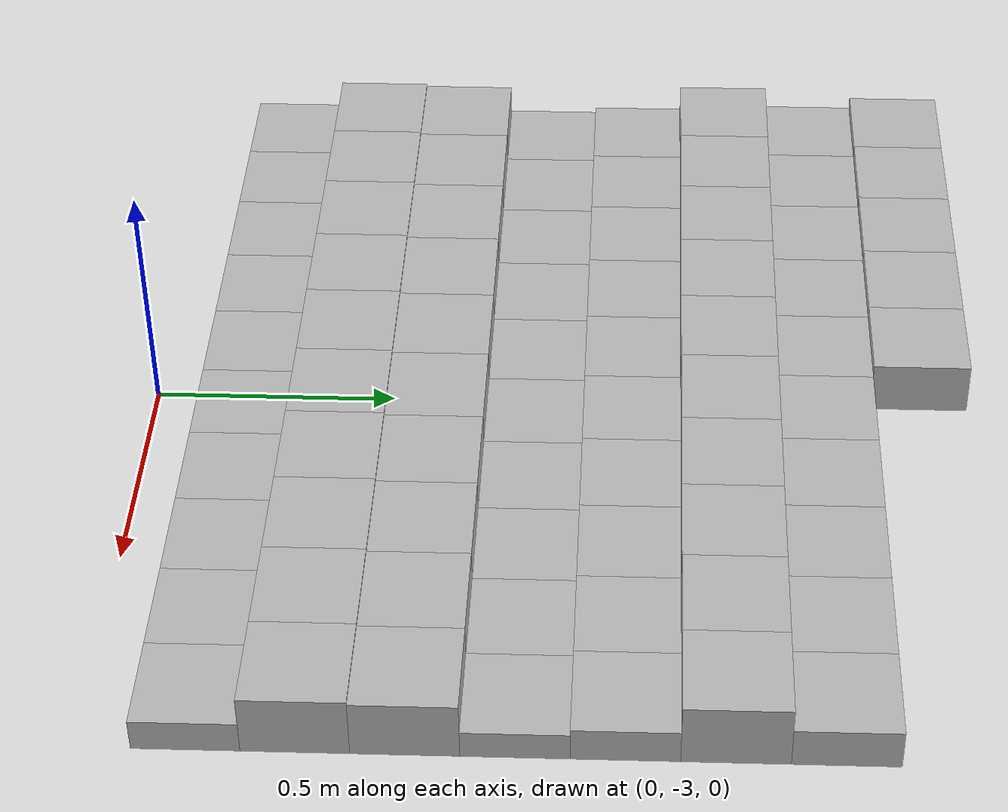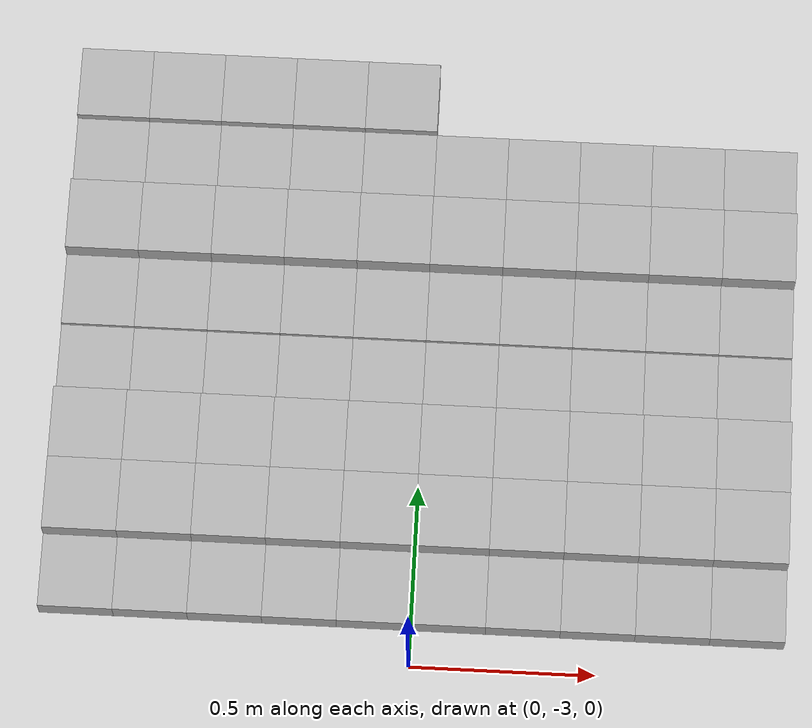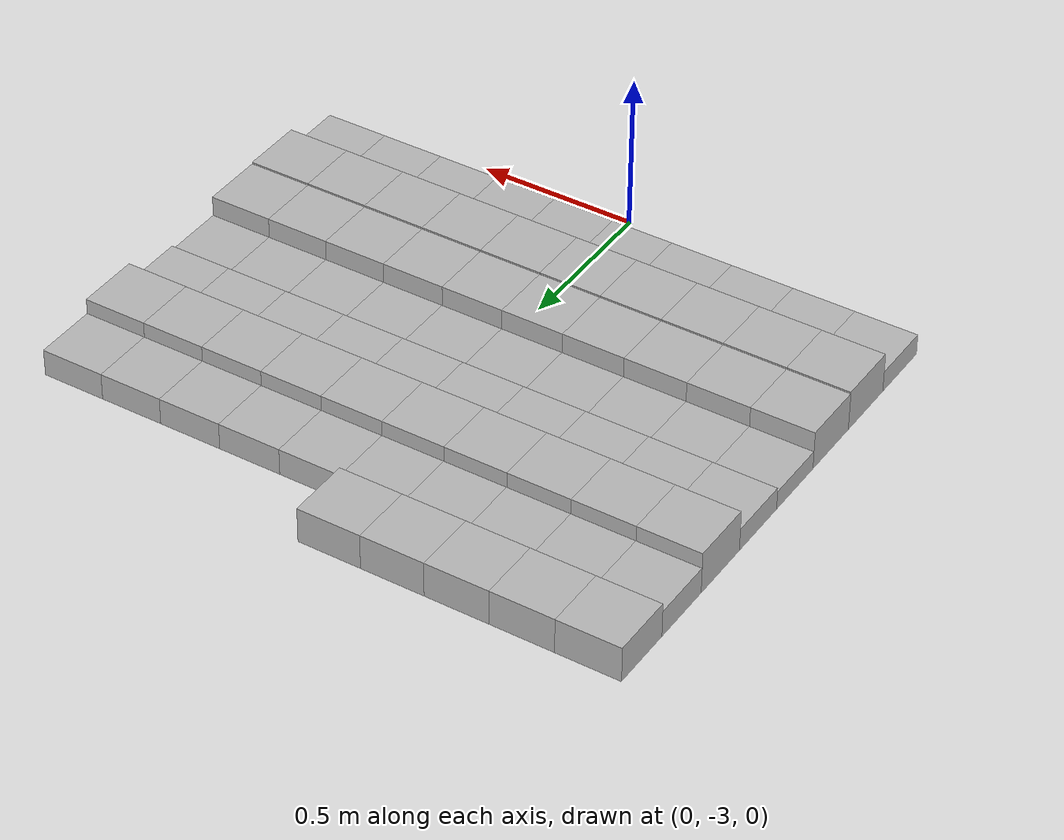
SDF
<sdf version="1.6">
 <model name="Terrain">
  <static>true</static>
  <link name="box_7_0">
   <pose>-0.9 -1.4 0.0568242273233 0 0 0</pose>
   <inertial>
    <mass>1.0</mass>
    <inertia><ixx>0.0</ixx><ixy>0.0</ixy><ixz>0.0</ixz><iyy>0.0</iyy><iyz>0.0</iyz><izz>0.0</izz></inertia>
   </inertial>
   <collision name="collision"><geometry><box><size>0.2 0.2 0.113648454647</size></box></geometry></collision>
   <visual name="visual"><geometry><box><size>0.2 0.2 0.113648454647</size></box></geometry></visual>
  </link>
  <link name="box_7_1">
   <pose>-0.7 -1.4 0.0568242273233 0 0 0</pose>
   <inertial>
    <mass>1.0</mass>
    <inertia><ixx>0.0</ixx><ixy>0.0</ixy><ixz>0.0</ixz><iyy>0.0</iyy><iyz>0.0</iyz><izz>0.0</izz></inertia>
   </inertial>
   <collision name="collision"><geometry><box><size>0.2 0.2 0.113648454647</size></box></geometry></collision>
   <visual name="visual"><geometry><box><size>0.2 0.2 0.113648454647</size></box></geometry></visual>
  </link>
  <link name="box_7_2">
   <pose>-0.5 -1.4 0.0568242273233 0 0 0</pose>
   <inertial>
    <mass>1.0</mass>
    <inertia><ixx>0.0</ixx><ixy>0.0</ixy><ixz>0.0</ixz><iyy>0.0</iyy><iyz>0.0</iyz><izz>0.0</izz></inertia>
   </inertial>
   <collision name="collision"><geometry><box><size>0.2 0.2 0.113648454647</size></box></geometry></collision>
   <visual name="visual"><geometry><box><size>0.2 0.2 0.113648454647</size></box></geometry></visual>
  </link>
  <link name="box_7_3">
   <pose>-0.3 -1.4 0.0568242273233 0 0 0</pose>
   <inertial>
    <mass>1.0</mass>
    <inertia><ixx>0.0</ixx><ixy>0.0</ixy><ixz>0.0</ixz><iyy>0.0</iyy><iyz>0.0</iyz><izz>0.0</izz></inertia>
   </inertial>
   <collision name="collision"><geometry><box><size>0.2 0.2 0.113648454647</size></box></geometry></collision>
   <visual name="visual"><geometry><box><size>0.2 0.2 0.113648454647</size></box></geometry></visual>
  </link>
  <link name="box_7_4">
   <pose>-0.1 -1.4 0.0568242273233 0 0 0</pose>
   <inertial>
    <mass>1.0</mass>
    <inertia><ixx>0.0</ixx><ixy>0.0</ixy><ixz>0.0</ixz><iyy>0.0</iyy><iyz>0.0</iyz><izz>0.0</izz></inertia>
   </inertial>
   <collision name="collision"><geometry><box><size>0.2 0.2 0.113648454647</size></box></geometry></collision>
   <visual name="visual"><geometry><box><size>0.2 0.2 0.113648454647</size></box></geometry></visual>
  </link>
  <link name="box_8_0">
   <pose>-0.9 -1.6 0.0431885011926 0 0 0</pose>
   <inertial>
    <mass>1.0</mass>
    <inertia><ixx>0.0</ixx><ixy>0.0</ixy><ixz>0.0</ixz><iyy>0.0</iyy><iyz>0.0</iyz><izz>0.0</izz></inertia>
   </inertial>
   <collision name="collision"><geometry><box><size>0.2 0.2 0.0863770023852</size></box></geometry></collision>
   <visual name="visual"><geometry><box><size>0.2 0.2 0.0863770023852</size></box></geometry></visual>
  </link>
  <link name="box_8_1">
   <pose>-0.7 -1.6 0.0431885011926 0 0 0</pose>
   <inertial>
    <mass>1.0</mass>
    <inertia><ixx>0.0</ixx><ixy>0.0</ixy><ixz>0.0</ixz><iyy>0.0</iyy><iyz>0.0</iyz><izz>0.0</izz></inertia>
   </inertial>
   <collision name="collision"><geometry><box><size>0.2 0.2 0.0863770023852</size></box></geometry></collision>
   <visual name="visual"><geometry><box><size>0.2 0.2 0.0863770023852</size></box></geometry></visual>
  </link>
  <link name="box_8_2">
   <pose>-0.5 -1.6 0.0431885011926 0 0 0</pose>
   <inertial>
    <mass>1.0</mass>
    <inertia><ixx>0.0</ixx><ixy>0.0</ixy><ixz>0.0</ixz><iyy>0.0</iyy><iyz>0.0</iyz><izz>0.0</izz></inertia>
   </inertial>
   <collision name="collision"><geometry><box><size>0.2 0.2 0.0863770023852</size></box></geometry></collision>
   <visual name="visual"><geometry><box><size>0.2 0.2 0.0863770023852</size></box></geometry></visual>
  </link>
  <link name="box_8_3">
   <pose>-0.3 -1.6 0.0431885011926 0 0 0</pose>
   <inertial>
    <mass>1.0</mass>
    <inertia><ixx>0.0</ixx><ixy>0.0</ixy><ixz>0.0</ixz><iyy>0.0</iyy><iyz>0.0</iyz><izz>0.0</izz></inertia>
   </inertial>
   <collision name="collision"><geometry><box><size>0.2 0.2 0.0863770023852</size></box></geometry></collision>
   <visual name="visual"><geometry><box><size>0.2 0.2 0.0863770023852</size></box></geometry></visual>
  </link>
  <link name="box_8_4">
   <pose>-0.1 -1.6 0.0431885011926 0 0 0</pose>
   <inertial>
    <mass>1.0</mass>
    <inertia><ixx>0.0</ixx><ixy>0.0</ixy><ixz>0.0</ixz><iyy>0.0</iyy><iyz>0.0</iyz><izz>0.0</izz></inertia>
   </inertial>
   <collision name="collision"><geometry><box><size>0.2 0.2 0.0863770023852</size></box></geometry></collision>
   <visual name="visual"><geometry><box><size>0.2 0.2 0.0863770023852</size></box></geometry></visual>
  </link>
  <link name="box_8_5">
   <pose>0.1 -1.6 0.0431885011926 0 0 0</pose>
   <inertial>
    <mass>1.0</mass>
    <inertia><ixx>0.0</ixx><ixy>0.0</ixy><ixz>0.0</ixz><iyy>0.0</iyy><iyz>0.0</iyz><izz>0.0</izz></inertia>
   </inertial>
   <collision name="collision"><geometry><box><size>0.2 0.2 0.0863770023852</size></box></geometry></collision>
   <visual name="visual"><geometry><box><size>0.2 0.2 0.0863770023852</size></box></geometry></visual>
  </link>
  <link name="box_8_6">
   <pose>0.3 -1.6 0.0431885011926 0 0 0</pose>
   <inertial>
    <mass>1.0</mass>
    <inertia><ixx>0.0</ixx><ixy>0.0</ixy><ixz>0.0</ixz><iyy>0.0</iyy><iyz>0.0</iyz><izz>0.0</izz></inertia>
   </inertial>
   <collision name="collision"><geometry><box><size>0.2 0.2 0.0863770023852</size></box></geometry></collision>
   <visual name="visual"><geometry><box><size>0.2 0.2 0.0863770023852</size></box></geometry></visual>
  </link>
  <link name="box_8_7">
   <pose>0.5 -1.6 0.0431885011926 0 0 0</pose>
   <inertial>
    <mass>1.0</mass>
    <inertia><ixx>0.0</ixx><ixy>0.0</ixy><ixz>0.0</ixz><iyy>0.0</iyy><iyz>0.0</iyz><izz>0.0</izz></inertia>
   </inertial>
   <collision name="collision"><geometry><box><size>0.2 0.2 0.0863770023852</size></box></geometry></collision>
   <visual name="visual"><geometry><box><size>0.2 0.2 0.0863770023852</size></box></geometry></visual>
  </link>
  <link name="box_8_8">
   <pose>0.7 -1.6 0.0431885011926 0 0 0</pose>
   <inertial>
    <mass>1.0</mass>
    <inertia><ixx>0.0</ixx><ixy>0.0</ixy><ixz>0.0</ixz><iyy>0.0</iyy><iyz>0.0</iyz><izz>0.0</izz></inertia>
   </inertial>
   <collision name="collision"><geometry><box><size>0.2 0.2 0.0863770023852</size></box></geometry></collision>
   <visual name="visual"><geometry><box><size>0.2 0.2 0.0863770023852</size></box></geometry></visual>
  </link>
  <link name="box_8_9">
   <pose>0.9 -1.6 0.0431885011926 0 0 0</pose>
   <inertial>
    <mass>1.0</mass>
    <inertia><ixx>0.0</ixx><ixy>0.0</ixy><ixz>0.0</ixz><iyy>0.0</iyy><iyz>0.0</iyz><izz>0.0</izz></inertia>
   </inertial>
   <collision name="collision"><geometry><box><size>0.2 0.2 0.0863770023852</size></box></geometry></collision>
   <visual name="visual"><geometry><box><size>0.2 0.2 0.0863770023852</size></box></geometry></visual>
  </link>
  <link name="box_9_0">
   <pose>-0.9 -1.8 0.0681062342773 0 0 0</pose>
   <inertial>
    <mass>1.0</mass>
    <inertia><ixx>0.0</ixx><ixy>0.0</ixy><ixz>0.0</ixz><iyy>0.0</iyy><iyz>0.0</iyz><izz>0.0</izz></inertia>
   </inertial>
   <collision name="collision"><geometry><box><size>0.2 0.2 0.136212468555</size></box></geometry></collision>
   <visual name="visual"><geometry><box><size>0.2 0.2 0.136212468555</size></box></geometry></visual>
  </link>
  <link name="box_9_1">
   <pose>-0.7 -1.8 0.0681062342773 0 0 0</pose>
   <inertial>
    <mass>1.0</mass>
    <inertia><ixx>0.0</ixx><ixy>0.0</ixy><ixz>0.0</ixz><iyy>0.0</iyy><iyz>0.0</iyz><izz>0.0</izz></inertia>
   </inertial>
   <collision name="collision"><geometry><box><size>0.2 0.2 0.136212468555</size></box></geometry></collision>
   <visual name="visual"><geometry><box><size>0.2 0.2 0.136212468555</size></box></geometry></visual>
  </link>
  <link name="box_9_2">
   <pose>-0.5 -1.8 0.0681062342773 0 0 0</pose>
   <inertial>
    <mass>1.0</mass>
    <inertia><ixx>0.0</ixx><ixy>0.0</ixy><ixz>0.0</ixz><iyy>0.0</iyy><iyz>0.0</iyz><izz>0.0</izz></inertia>
   </inertial>
   <collision name="collision"><geometry><box><size>0.2 0.2 0.136212468555</size></box></geometry></collision>
   <visual name="visual"><geometry><box><size>0.2 0.2 0.136212468555</size></box></geometry></visual>
  </link>
  <link name="box_9_3">
   <pose>-0.3 -1.8 0.0681062342773 0 0 0</pose>
   <inertial>
    <mass>1.0</mass>
    <inertia><ixx>0.0</ixx><ixy>0.0</ixy><ixz>0.0</ixz><iyy>0.0</iyy><iyz>0.0</iyz><izz>0.0</izz></inertia>
   </inertial>
   <collision name="collision"><geometry><box><size>0.2 0.2 0.136212468555</size></box></geometry></collision>
   <visual name="visual"><geometry><box><size>0.2 0.2 0.136212468555</size></box></geometry></visual>
  </link>
  <link name="box_9_4">
   <pose>-0.1 -1.8 0.0681062342773 0 0 0</pose>
   <inertial>
    <mass>1.0</mass>
    <inertia><ixx>0.0</ixx><ixy>0.0</ixy><ixz>0.0</ixz><iyy>0.0</iyy><iyz>0.0</iyz><izz>0.0</izz></inertia>
   </inertial>
   <collision name="collision"><geometry><box><size>0.2 0.2 0.136212468555</size></box></geometry></collision>
   <visual name="visual"><geometry><box><size>0.2 0.2 0.136212468555</size></box></geometry></visual>
  </link>
  <link name="box_9_5">
   <pose>0.1 -1.8 0.0681062342773 0 0 0</pose>
   <inertial>
    <mass>1.0</mass>
    <inertia><ixx>0.0</ixx><ixy>0.0</ixy><ixz>0.0</ixz><iyy>0.0</iyy><iyz>0.0</iyz><izz>0.0</izz></inertia>
   </inertial>
   <collision name="collision"><geometry><box><size>0.2 0.2 0.136212468555</size></box></geometry></collision>
   <visual name="visual"><geometry><box><size>0.2 0.2 0.136212468555</size></box></geometry></visual>
  </link>
  <link name="box_9_6">
   <pose>0.3 -1.8 0.0681062342773 0 0 0</pose>
   <inertial>
    <mass>1.0</mass>
    <inertia><ixx>0.0</ixx><ixy>0.0</ixy><ixz>0.0</ixz><iyy>0.0</iyy><iyz>0.0</iyz><izz>0.0</izz></inertia>
   </inertial>
   <collision name="collision"><geometry><box><size>0.2 0.2 0.136212468555</size></box></geometry></collision>
   <visual name="visual"><geometry><box><size>0.2 0.2 0.136212468555</size></box></geometry></visual>
  </link>
  <link name="box_9_7">
   <pose>0.5 -1.8 0.0681062342773 0 0 0</pose>
   <inertial>
    <mass>1.0</mass>
    <inertia><ixx>0.0</ixx><ixy>0.0</ixy><ixz>0.0</ixz><iyy>0.0</iyy><iyz>0.0</iyz><izz>0.0</izz></inertia>
   </inertial>
   <collision name="collision"><geometry><box><size>0.2 0.2 0.136212468555</size></box></geometry></collision>
   <visual name="visual"><geometry><box><size>0.2 0.2 0.136212468555</size></box></geometry></visual>
  </link>
  <link name="box_9_8">
   <pose>0.7 -1.8 0.0681062342773 0 0 0</pose>
   <inertial>
    <mass>1.0</mass>
    <inertia><ixx>0.0</ixx><ixy>0.0</ixy><ixz>0.0</ixz><iyy>0.0</iyy><iyz>0.0</iyz><izz>0.0</izz></inertia>
   </inertial>
   <collision name="collision"><geometry><box><size>0.2 0.2 0.136212468555</size></box></geometry></collision>
   <visual name="visual"><geometry><box><size>0.2 0.2 0.136212468555</size></box></geometry></visual>
  </link>
  <link name="box_9_9">
   <pose>0.9 -1.8 0.0681062342773 0 0 0</pose>
   <inertial>
    <mass>1.0</mass>
    <inertia><ixx>0.0</ixx><ixy>0.0</ixy><ixz>0.0</ixz><iyy>0.0</iyy><iyz>0.0</iyz><izz>0.0</izz></inertia>
   </inertial>
   <collision name="collision"><geometry><box><size>0.2 0.2 0.136212468555</size></box></geometry></collision>
   <visual name="visual"><geometry><box><size>0.2 0.2 0.136212468555</size></box></geometry></visual>
  </link>
  <link name="box_10_0">
   <pose>-0.9 -2.0 0.0371848347838 0 0 0</pose>
   <inertial>
    <mass>1.0</mass>
    <inertia><ixx>0.0</ixx><ixy>0.0</ixy><ixz>0.0</ixz><iyy>0.0</iyy><iyz>0.0</iyz><izz>0.0</izz></inertia>
   </inertial>
   <collision name="collision"><geometry><box><size>0.2 0.2 0.0743696695676</size></box></geometry></collision>
   <visual name="visual"><geometry><box><size>0.2 0.2 0.0743696695676</size></box></geometry></visual>
  </link>
  <link name="box_10_1">
   <pose>-0.7 -2.0 0.0371848347838 0 0 0</pose>
   <inertial>
    <mass>1.0</mass>
    <inertia><ixx>0.0</ixx><ixy>0.0</ixy><ixz>0.0</ixz><iyy>0.0</iyy><iyz>0.0</iyz><izz>0.0</izz></inertia>
   </inertial>
   <collision name="collision"><geometry><box><size>0.2 0.2 0.0743696695676</size></box></geometry></collision>
   <visual name="visual"><geometry><box><size>0.2 0.2 0.0743696695676</size></box></geometry></visual>
  </link>
  <link name="box_10_2">
   <pose>-0.5 -2.0 0.0371848347838 0 0 0</pose>
   <inertial>
    <mass>1.0</mass>
    <inertia><ixx>0.0</ixx><ixy>0.0</ixy><ixz>0.0</ixz><iyy>0.0</iyy><iyz>0.0</iyz><izz>0.0</izz></inertia>
   </inertial>
   <collision name="collision"><geometry><box><size>0.2 0.2 0.0743696695676</size></box></geometry></collision>
   <visual name="visual"><geometry><box><size>0.2 0.2 0.0743696695676</size></box></geometry></visual>
  </link>
  <link name="box_10_3">
   <pose>-0.3 -2.0 0.0371848347838 0 0 0</pose>
   <inertial>
    <mass>1.0</mass>
    <inertia><ixx>0.0</ixx><ixy>0.0</ixy><ixz>0.0</ixz><iyy>0.0</iyy><iyz>0.0</iyz><izz>0.0</izz></inertia>
   </inertial>
   <collision name="collision"><geometry><box><size>0.2 0.2 0.0743696695676</size></box></geometry></collision>
   <visual name="visual"><geometry><box><size>0.2 0.2 0.0743696695676</size></box></geometry></visual>
  </link>
  <link name="box_10_4">
   <pose>-0.1 -2.0 0.0371848347838 0 0 0</pose>
   <inertial>
    <mass>1.0</mass>
    <inertia><ixx>0.0</ixx><ixy>0.0</ixy><ixz>0.0</ixz><iyy>0.0</iyy><iyz>0.0</iyz><izz>0.0</izz></inertia>
   </inertial>
   <collision name="collision"><geometry><box><size>0.2 0.2 0.0743696695676</size></box></geometry></collision>
   <visual name="visual"><geometry><box><size>0.2 0.2 0.0743696695676</size></box></geometry></visual>
  </link>
  <link name="box_10_5">
   <pose>0.1 -2.0 0.0371848347838 0 0 0</pose>
   <inertial>
    <mass>1.0</mass>
    <inertia><ixx>0.0</ixx><ixy>0.0</ixy><ixz>0.0</ixz><iyy>0.0</iyy><iyz>0.0</iyz><izz>0.0</izz></inertia>
   </inertial>
   <collision name="collision"><geometry><box><size>0.2 0.2 0.0743696695676</size></box></geometry></collision>
   <visual name="visual"><geometry><box><size>0.2 0.2 0.0743696695676</size></box></geometry></visual>
  </link>
  <link name="box_10_6">
   <pose>0.3 -2.0 0.0371848347838 0 0 0</pose>
   <inertial>
    <mass>1.0</mass>
    <inertia><ixx>0.0</ixx><ixy>0.0</ixy><ixz>0.0</ixz><iyy>0.0</iyy><iyz>0.0</iyz><izz>0.0</izz></inertia>
   </inertial>
   <collision name="collision"><geometry><box><size>0.2 0.2 0.0743696695676</size></box></geometry></collision>
   <visual name="visual"><geometry><box><size>0.2 0.2 0.0743696695676</size></box></geometry></visual>
  </link>
  <link name="box_10_7">
   <pose>0.5 -2.0 0.0371848347838 0 0 0</pose>
   <inertial>
    <mass>1.0</mass>
    <inertia><ixx>0.0</ixx><ixy>0.0</ixy><ixz>0.0</ixz><iyy>0.0</iyy><iyz>0.0</iyz><izz>0.0</izz></inertia>
   </inertial>
   <collision name="collision"><geometry><box><size>0.2 0.2 0.0743696695676</size></box></geometry></collision>
   <visual name="visual"><geometry><box><size>0.2 0.2 0.0743696695676</size></box></geometry></visual>
  </link>
  <link name="box_10_8">
   <pose>0.7 -2.0 0.0371848347838 0 0 0</pose>
   <inertial>
    <mass>1.0</mass>
    <inertia><ixx>0.0</ixx><ixy>0.0</ixy><ixz>0.0</ixz><iyy>0.0</iyy><iyz>0.0</iyz><izz>0.0</izz></inertia>
   </inertial>
   <collision name="collision"><geometry><box><size>0.2 0.2 0.0743696695676</size></box></geometry></collision>
   <visual name="visual"><geometry><box><size>0.2 0.2 0.0743696695676</size></box></geometry></visual>
  </link>
  <link name="box_10_9">
   <pose>0.9 -2.0 0.0371848347838 0 0 0</pose>
   <inertial>
    <mass>1.0</mass>
    <inertia><ixx>0.0</ixx><ixy>0.0</ixy><ixz>0.0</ixz><iyy>0.0</iyy><iyz>0.0</iyz><izz>0.0</izz></inertia>
   </inertial>
   <collision name="collision"><geometry><box><size>0.2 0.2 0.0743696695676</size></box></geometry></collision>
   <visual name="visual"><geometry><box><size>0.2 0.2 0.0743696695676</size></box></geometry></visual>
  </link>
  <link name="box_11_0">
   <pose>-0.9 -2.2 0.0306253721113 0 0 0</pose>
   <inertial>
    <mass>1.0</mass>
    <inertia><ixx>0.0</ixx><ixy>0.0</ixy><ixz>0.0</ixz><iyy>0.0</iyy><iyz>0.0</iyz><izz>0.0</izz></inertia>
   </inertial>
   <collision name="collision"><geometry><box><size>0.2 0.2 0.0612507442226</size></box></geometry></collision>
   <visual name="visual"><geometry><box><size>0.2 0.2 0.0612507442226</size></box></geometry></visual>
  </link>
  <link name="box_11_1">
   <pose>-0.7 -2.2 0.0306253721113 0 0 0</pose>
   <inertial>
    <mass>1.0</mass>
    <inertia><ixx>0.0</ixx><ixy>0.0</ixy><ixz>0.0</ixz><iyy>0.0</iyy><iyz>0.0</iyz><izz>0.0</izz></inertia>
   </inertial>
   <collision name="collision"><geometry><box><size>0.2 0.2 0.0612507442226</size></box></geometry></collision>
   <visual name="visual"><geometry><box><size>0.2 0.2 0.0612507442226</size></box></geometry></visual>
  </link>
  <link name="box_11_2">
   <pose>-0.5 -2.2 0.0306253721113 0 0 0</pose>
   <inertial>
    <mass>1.0</mass>
    <inertia><ixx>0.0</ixx><ixy>0.0</ixy><ixz>0.0</ixz><iyy>0.0</iyy><iyz>0.0</iyz><izz>0.0</izz></inertia>
   </inertial>
   <collision name="collision"><geometry><box><size>0.2 0.2 0.0612507442226</size></box></geometry></collision>
   <visual name="visual"><geometry><box><size>0.2 0.2 0.0612507442226</size></box></geometry></visual>
  </link>
  <link name="box_11_3">
   <pose>-0.3 -2.2 0.0306253721113 0 0 0</pose>
   <inertial>
    <mass>1.0</mass>
    <inertia><ixx>0.0</ixx><ixy>0.0</ixy><ixz>0.0</ixz><iyy>0.0</iyy><iyz>0.0</iyz><izz>0.0</izz></inertia>
   </inertial>
   <collision name="collision"><geometry><box><size>0.2 0.2 0.0612507442226</size></box></geometry></collision>
   <visual name="visual"><geometry><box><size>0.2 0.2 0.0612507442226</size></box></geometry></visual>
  </link>
  <link name="box_11_4">
   <pose>-0.1 -2.2 0.0306253721113 0 0 0</pose>
   <inertial>
    <mass>1.0</mass>
    <inertia><ixx>0.0</ixx><ixy>0.0</ixy><ixz>0.0</ixz><iyy>0.0</iyy><iyz>0.0</iyz><izz>0.0</izz></inertia>
   </inertial>
   <collision name="collision"><geometry><box><size>0.2 0.2 0.0612507442226</size></box></geometry></collision>
   <visual name="visual"><geometry><box><size>0.2 0.2 0.0612507442226</size></box></geometry></visual>
  </link>
  <link name="box_11_5">
   <pose>0.1 -2.2 0.0306253721113 0 0 0</pose>
   <inertial>
    <mass>1.0</mass>
    <inertia><ixx>0.0</ixx><ixy>0.0</ixy><ixz>0.0</ixz><iyy>0.0</iyy><iyz>0.0</iyz><izz>0.0</izz></inertia>
   </inertial>
   <collision name="collision"><geometry><box><size>0.2 0.2 0.0612507442226</size></box></geometry></collision>
   <visual name="visual"><geometry><box><size>0.2 0.2 0.0612507442226</size></box></geometry></visual>
  </link>
  <link name="box_11_6">
   <pose>0.3 -2.2 0.0306253721113 0 0 0</pose>
   <inertial>
    <mass>1.0</mass>
    <inertia><ixx>0.0</ixx><ixy>0.0</ixy><ixz>0.0</ixz><iyy>0.0</iyy><iyz>0.0</iyz><izz>0.0</izz></inertia>
   </inertial>
   <collision name="collision"><geometry><box><size>0.2 0.2 0.0612507442226</size></box></geometry></collision>
   <visual name="visual"><geometry><box><size>0.2 0.2 0.0612507442226</size></box></geometry></visual>
  </link>
  <link name="box_11_7">
   <pose>0.5 -2.2 0.0306253721113 0 0 0</pose>
   <inertial>
    <mass>1.0</mass>
    <inertia><ixx>0.0</ixx><ixy>0.0</ixy><ixz>0.0</ixz><iyy>0.0</iyy><iyz>0.0</iyz><izz>0.0</izz></inertia>
   </inertial>
   <collision name="collision"><geometry><box><size>0.2 0.2 0.0612507442226</size></box></geometry></collision>
   <visual name="visual"><geometry><box><size>0.2 0.2 0.0612507442226</size></box></geometry></visual>
  </link>
  <link name="box_11_8">
   <pose>0.7 -2.2 0.0306253721113 0 0 0</pose>
   <inertial>
    <mass>1.0</mass>
    <inertia><ixx>0.0</ixx><ixy>0.0</ixy><ixz>0.0</ixz><iyy>0.0</iyy><iyz>0.0</iyz><izz>0.0</izz></inertia>
   </inertial>
   <collision name="collision"><geometry><box><size>0.2 0.2 0.0612507442226</size></box></geometry></collision>
   <visual name="visual"><geometry><box><size>0.2 0.2 0.0612507442226</size></box></geometry></visual>
  </link>
  <link name="box_11_9">
   <pose>0.9 -2.2 0.0306253721113 0 0 0</pose>
   <inertial>
    <mass>1.0</mass>
    <inertia><ixx>0.0</ixx><ixy>0.0</ixy><ixz>0.0</ixz><iyy>0.0</iyy><iyz>0.0</iyz><izz>0.0</izz></inertia>
   </inertial>
   <collision name="collision"><geometry><box><size>0.2 0.2 0.0612507442226</size></box></geometry></collision>
   <visual name="visual"><geometry><box><size>0.2 0.2 0.0612507442226</size></box></geometry></visual>
  </link>
  <link name="box_12_0">
   <pose>-0.9 -2.4 0.0634005711571 0 0 0</pose>
   <inertial>
    <mass>1.0</mass>
    <inertia><ixx>0.0</ixx><ixy>0.0</ixy><ixz>0.0</ixz><iyy>0.0</iyy><iyz>0.0</iyz><izz>0.0</izz></inertia>
   </inertial>
   <collision name="collision"><geometry><box><size>0.2 0.2 0.126801142314</size></box></geometry></collision>
   <visual name="visual"><geometry><box><size>0.2 0.2 0.126801142314</size></box></geometry></visual>
  </link>
  <link name="box_12_1">
   <pose>-0.7 -2.4 0.0634005711571 0 0 0</pose>
   <inertial>
    <mass>1.0</mass>
    <inertia><ixx>0.0</ixx><ixy>0.0</ixy><ixz>0.0</ixz><iyy>0.0</iyy><iyz>0.0</iyz><izz>0.0</izz></inertia>
   </inertial>
   <collision name="collision"><geometry><box><size>0.2 0.2 0.126801142314</size></box></geometry></collision>
   <visual name="visual"><geometry><box><size>0.2 0.2 0.126801142314</size></box></geometry></visual>
  </link>
  <link name="box_12_2">
   <pose>-0.5 -2.4 0.0634005711571 0 0 0</pose>
   <inertial>
    <mass>1.0</mass>
    <inertia><ixx>0.0</ixx><ixy>0.0</ixy><ixz>0.0</ixz><iyy>0.0</iyy><iyz>0.0</iyz><izz>0.0</izz></inertia>
   </inertial>
   <collision name="collision"><geometry><box><size>0.2 0.2 0.126801142314</size></box></geometry></collision>
   <visual name="visual"><geometry><box><size>0.2 0.2 0.126801142314</size></box></geometry></visual>
  </link>
  <link name="box_12_3">
   <pose>-0.3 -2.4 0.0634005711571 0 0 0</pose>
   <inertial>
    <mass>1.0</mass>
    <inertia><ixx>0.0</ixx><ixy>0.0</ixy><ixz>0.0</ixz><iyy>0.0</iyy><iyz>0.0</iyz><izz>0.0</izz></inertia>
   </inertial>
   <collision name="collision"><geometry><box><size>0.2 0.2 0.126801142314</size></box></geometry></collision>
   <visual name="visual"><geometry><box><size>0.2 0.2 0.126801142314</size></box></geometry></visual>
  </link>
  <link name="box_12_4">
   <pose>-0.1 -2.4 0.0634005711571 0 0 0</pose>
   <inertial>
    <mass>1.0</mass>
    <inertia><ixx>0.0</ixx><ixy>0.0</ixy><ixz>0.0</ixz><iyy>0.0</iyy><iyz>0.0</iyz><izz>0.0</izz></inertia>
   </inertial>
   <collision name="collision"><geometry><box><size>0.2 0.2 0.126801142314</size></box></geometry></collision>
   <visual name="visual"><geometry><box><size>0.2 0.2 0.126801142314</size></box></geometry></visual>
  </link>
  <link name="box_12_5">
   <pose>0.1 -2.4 0.0634005711571 0 0 0</pose>
   <inertial>
    <mass>1.0</mass>
    <inertia><ixx>0.0</ixx><ixy>0.0</ixy><ixz>0.0</ixz><iyy>0.0</iyy><iyz>0.0</iyz><izz>0.0</izz></inertia>
   </inertial>
   <collision name="collision"><geometry><box><size>0.2 0.2 0.126801142314</size></box></geometry></collision>
   <visual name="visual"><geometry><box><size>0.2 0.2 0.126801142314</size></box></geometry></visual>
  </link>
  <link name="box_12_6">
   <pose>0.3 -2.4 0.0634005711571 0 0 0</pose>
   <inertial>
    <mass>1.0</mass>
    <inertia><ixx>0.0</ixx><ixy>0.0</ixy><ixz>0.0</ixz><iyy>0.0</iyy><iyz>0.0</iyz><izz>0.0</izz></inertia>
   </inertial>
   <collision name="collision"><geometry><box><size>0.2 0.2 0.126801142314</size></box></geometry></collision>
   <visual name="visual"><geometry><box><size>0.2 0.2 0.126801142314</size></box></geometry></visual>
  </link>
  <link name="box_12_7">
   <pose>0.5 -2.4 0.0634005711571 0 0 0</pose>
   <inertial>
    <mass>1.0</mass>
    <inertia><ixx>0.0</ixx><ixy>0.0</ixy><ixz>0.0</ixz><iyy>0.0</iyy><iyz>0.0</iyz><izz>0.0</izz></inertia>
   </inertial>
   <collision name="collision"><geometry><box><size>0.2 0.2 0.126801142314</size></box></geometry></collision>
   <visual name="visual"><geometry><box><size>0.2 0.2 0.126801142314</size></box></geometry></visual>
  </link>
  <link name="box_12_8">
   <pose>0.7 -2.4 0.0634005711571 0 0 0</pose>
   <inertial>
    <mass>1.0</mass>
    <inertia><ixx>0.0</ixx><ixy>0.0</ixy><ixz>0.0</ixz><iyy>0.0</iyy><iyz>0.0</iyz><izz>0.0</izz></inertia>
   </inertial>
   <collision name="collision"><geometry><box><size>0.2 0.2 0.126801142314</size></box></geometry></collision>
   <visual name="visual"><geometry><box><size>0.2 0.2 0.126801142314</size></box></geometry></visual>
  </link>
  <link name="box_12_9">
   <pose>0.9 -2.4 0.0634005711571 0 0 0</pose>
   <inertial>
    <mass>1.0</mass>
    <inertia><ixx>0.0</ixx><ixy>0.0</ixy><ixz>0.0</ixz><iyy>0.0</iyy><iyz>0.0</iyz><izz>0.0</izz></inertia>
   </inertial>
   <collision name="collision"><geometry><box><size>0.2 0.2 0.126801142314</size></box></geometry></collision>
   <visual name="visual"><geometry><box><size>0.2 0.2 0.126801142314</size></box></geometry></visual>
  </link>
  <link name="box_13_0">
   <pose>-0.9 -2.6 0.0660764277591 0 0 0</pose>
   <inertial>
    <mass>1.0</mass>
    <inertia><ixx>0.0</ixx><ixy>0.0</ixy><ixz>0.0</ixz><iyy>0.0</iyy><iyz>0.0</iyz><izz>0.0</izz></inertia>
   </inertial>
   <collision name="collision"><geometry><box><size>0.2 0.2 0.132152855518</size></box></geometry></collision>
   <visual name="visual"><geometry><box><size>0.2 0.2 0.132152855518</size></box></geometry></visual>
  </link>
  <link name="box_13_1">
   <pose>-0.7 -2.6 0.0660764277591 0 0 0</pose>
   <inertial>
    <mass>1.0</mass>
    <inertia><ixx>0.0</ixx><ixy>0.0</ixy><ixz>0.0</ixz><iyy>0.0</iyy><iyz>0.0</iyz><izz>0.0</izz></inertia>
   </inertial>
   <collision name="collision"><geometry><box><size>0.2 0.2 0.132152855518</size></box></geometry></collision>
   <visual name="visual"><geometry><box><size>0.2 0.2 0.132152855518</size></box></geometry></visual>
  </link>
  <link name="box_13_2">
   <pose>-0.5 -2.6 0.0660764277591 0 0 0</pose>
   <inertial>
    <mass>1.0</mass>
    <inertia><ixx>0.0</ixx><ixy>0.0</ixy><ixz>0.0</ixz><iyy>0.0</iyy><iyz>0.0</iyz><izz>0.0</izz></inertia>
   </inertial>
   <collision name="collision"><geometry><box><size>0.2 0.2 0.132152855518</size></box></geometry></collision>
   <visual name="visual"><geometry><box><size>0.2 0.2 0.132152855518</size></box></geometry></visual>
  </link>
  <link name="box_13_3">
   <pose>-0.3 -2.6 0.0660764277591 0 0 0</pose>
   <inertial>
    <mass>1.0</mass>
    <inertia><ixx>0.0</ixx><ixy>0.0</ixy><ixz>0.0</ixz><iyy>0.0</iyy><iyz>0.0</iyz><izz>0.0</izz></inertia>
   </inertial>
   <collision name="collision"><geometry><box><size>0.2 0.2 0.132152855518</size></box></geometry></collision>
   <visual name="visual"><geometry><box><size>0.2 0.2 0.132152855518</size></box></geometry></visual>
  </link>
  <link name="box_13_4">
   <pose>-0.1 -2.6 0.0660764277591 0 0 0</pose>
   <inertial>
    <mass>1.0</mass>
    <inertia><ixx>0.0</ixx><ixy>0.0</ixy><ixz>0.0</ixz><iyy>0.0</iyy><iyz>0.0</iyz><izz>0.0</izz></inertia>
   </inertial>
   <collision name="collision"><geometry><box><size>0.2 0.2 0.132152855518</size></box></geometry></collision>
   <visual name="visual"><geometry><box><size>0.2 0.2 0.132152855518</size></box></geometry></visual>
  </link>
  <link name="box_13_5">
   <pose>0.1 -2.6 0.0660764277591 0 0 0</pose>
   <inertial>
    <mass>1.0</mass>
    <inertia><ixx>0.0</ixx><ixy>0.0</ixy><ixz>0.0</ixz><iyy>0.0</iyy><iyz>0.0</iyz><izz>0.0</izz></inertia>
   </inertial>
   <collision name="collision"><geometry><box><size>0.2 0.2 0.132152855518</size></box></geometry></collision>
   <visual name="visual"><geometry><box><size>0.2 0.2 0.132152855518</size></box></geometry></visual>
  </link>
  <link name="box_13_6">
   <pose>0.3 -2.6 0.0660764277591 0 0 0</pose>
   <inertial>
    <mass>1.0</mass>
    <inertia><ixx>0.0</ixx><ixy>0.0</ixy><ixz>0.0</ixz><iyy>0.0</iyy><iyz>0.0</iyz><izz>0.0</izz></inertia>
   </inertial>
   <collision name="collision"><geometry><box><size>0.2 0.2 0.132152855518</size></box></geometry></collision>
   <visual name="visual"><geometry><box><size>0.2 0.2 0.132152855518</size></box></geometry></visual>
  </link>
  <link name="box_13_7">
   <pose>0.5 -2.6 0.0660764277591 0 0 0</pose>
   <inertial>
    <mass>1.0</mass>
    <inertia><ixx>0.0</ixx><ixy>0.0</ixy><ixz>0.0</ixz><iyy>0.0</iyy><iyz>0.0</iyz><izz>0.0</izz></inertia>
   </inertial>
   <collision name="collision"><geometry><box><size>0.2 0.2 0.132152855518</size></box></geometry></collision>
   <visual name="visual"><geometry><box><size>0.2 0.2 0.132152855518</size></box></geometry></visual>
  </link>
  <link name="box_13_8">
   <pose>0.7 -2.6 0.0660764277591 0 0 0</pose>
   <inertial>
    <mass>1.0</mass>
    <inertia><ixx>0.0</ixx><ixy>0.0</ixy><ixz>0.0</ixz><iyy>0.0</iyy><iyz>0.0</iyz><izz>0.0</izz></inertia>
   </inertial>
   <collision name="collision"><geometry><box><size>0.2 0.2 0.132152855518</size></box></geometry></collision>
   <visual name="visual"><geometry><box><size>0.2 0.2 0.132152855518</size></box></geometry></visual>
  </link>
  <link name="box_13_9">
   <pose>0.9 -2.6 0.0660764277591 0 0 0</pose>
   <inertial>
    <mass>1.0</mass>
    <inertia><ixx>0.0</ixx><ixy>0.0</ixy><ixz>0.0</ixz><iyy>0.0</iyy><iyz>0.0</iyz><izz>0.0</izz></inertia>
   </inertial>
   <collision name="collision"><geometry><box><size>0.2 0.2 0.132152855518</size></box></geometry></collision>
   <visual name="visual"><geometry><box><size>0.2 0.2 0.132152855518</size></box></geometry></visual>
  </link>
  <link name="box_14_0">
   <pose>-0.9 -2.8 0.0346169643728 0 0 0</pose>
   <inertial>
    <mass>1.0</mass>
    <inertia><ixx>0.0</ixx><ixy>0.0</ixy><ixz>0.0</ixz><iyy>0.0</iyy><iyz>0.0</iyz><izz>0.0</izz></inertia>
   </inertial>
   <collision name="collision"><geometry><box><size>0.2 0.2 0.0692339287456</size></box></geometry></collision>
   <visual name="visual"><geometry><box><size>0.2 0.2 0.0692339287456</size></box></geometry></visual>
  </link>
  <link name="box_14_1">
   <pose>-0.7 -2.8 0.0346169643728 0 0 0</pose>
   <inertial>
    <mass>1.0</mass>
    <inertia><ixx>0.0</ixx><ixy>0.0</ixy><ixz>0.0</ixz><iyy>0.0</iyy><iyz>0.0</iyz><izz>0.0</izz></inertia>
   </inertial>
   <collision name="collision"><geometry><box><size>0.2 0.2 0.0692339287456</size></box></geometry></collision>
   <visual name="visual"><geometry><box><size>0.2 0.2 0.0692339287456</size></box></geometry></visual>
  </link>
  <link name="box_14_2">
   <pose>-0.5 -2.8 0.0346169643728 0 0 0</pose>
   <inertial>
    <mass>1.0</mass>
    <inertia><ixx>0.0</ixx><ixy>0.0</ixy><ixz>0.0</ixz><iyy>0.0</iyy><iyz>0.0</iyz><izz>0.0</izz></inertia>
   </inertial>
   <collision name="collision"><geometry><box><size>0.2 0.2 0.0692339287456</size></box></geometry></collision>
   <visual name="visual"><geometry><box><size>0.2 0.2 0.0692339287456</size></box></geometry></visual>
  </link>
  <link name="box_14_3">
   <pose>-0.3 -2.8 0.0346169643728 0 0 0</pose>
   <inertial>
    <mass>1.0</mass>
    <inertia><ixx>0.0</ixx><ixy>0.0</ixy><ixz>0.0</ixz><iyy>0.0</iyy><iyz>0.0</iyz><izz>0.0</izz></inertia>
   </inertial>
   <collision name="collision"><geometry><box><size>0.2 0.2 0.0692339287456</size></box></geometry></collision>
   <visual name="visual"><geometry><box><size>0.2 0.2 0.0692339287456</size></box></geometry></visual>
  </link>
  <link name="box_14_4">
   <pose>-0.1 -2.8 0.0346169643728 0 0 0</pose>
   <inertial>
    <mass>1.0</mass>
    <inertia><ixx>0.0</ixx><ixy>0.0</ixy><ixz>0.0</ixz><iyy>0.0</iyy><iyz>0.0</iyz><izz>0.0</izz></inertia>
   </inertial>
   <collision name="collision"><geometry><box><size>0.2 0.2 0.0692339287456</size></box></geometry></collision>
   <visual name="visual"><geometry><box><size>0.2 0.2 0.0692339287456</size></box></geometry></visual>
  </link>
  <link name="box_14_5">
   <pose>0.1 -2.8 0.0346169643728 0 0 0</pose>
   <inertial>
    <mass>1.0</mass>
    <inertia><ixx>0.0</ixx><ixy>0.0</ixy><ixz>0.0</ixz><iyy>0.0</iyy><iyz>0.0</iyz><izz>0.0</izz></inertia>
   </inertial>
   <collision name="collision"><geometry><box><size>0.2 0.2 0.0692339287456</size></box></geometry></collision>
   <visual name="visual"><geometry><box><size>0.2 0.2 0.0692339287456</size></box></geometry></visual>
  </link>
  <link name="box_14_6">
   <pose>0.3 -2.8 0.0346169643728 0 0 0</pose>
   <inertial>
    <mass>1.0</mass>
    <inertia><ixx>0.0</ixx><ixy>0.0</ixy><ixz>0.0</ixz><iyy>0.0</iyy><iyz>0.0</iyz><izz>0.0</izz></inertia>
   </inertial>
   <collision name="collision"><geometry><box><size>0.2 0.2 0.0692339287456</size></box></geometry></collision>
   <visual name="visual"><geometry><box><size>0.2 0.2 0.0692339287456</size></box></geometry></visual>
  </link>
  <link name="box_14_7">
   <pose>0.5 -2.8 0.0346169643728 0 0 0</pose>
   <inertial>
    <mass>1.0</mass>
    <inertia><ixx>0.0</ixx><ixy>0.0</ixy><ixz>0.0</ixz><iyy>0.0</iyy><iyz>0.0</iyz><izz>0.0</izz></inertia>
   </inertial>
   <collision name="collision"><geometry><box><size>0.2 0.2 0.0692339287456</size></box></geometry></collision>
   <visual name="visual"><geometry><box><size>0.2 0.2 0.0692339287456</size></box></geometry></visual>
  </link>
  <link name="box_14_8">
   <pose>0.7 -2.8 0.0346169643728 0 0 0</pose>
   <inertial>
    <mass>1.0</mass>
    <inertia><ixx>0.0</ixx><ixy>0.0</ixy><ixz>0.0</ixz><iyy>0.0</iyy><iyz>0.0</iyz><izz>0.0</izz></inertia>
   </inertial>
   <collision name="collision"><geometry><box><size>0.2 0.2 0.0692339287456</size></box></geometry></collision>
   <visual name="visual"><geometry><box><size>0.2 0.2 0.0692339287456</size></box></geometry></visual>
  </link>
  <link name="box_14_9">
   <pose>0.9 -2.8 0.0346169643728 0 0 0</pose>
   <inertial>
    <mass>1.0</mass>
    <inertia><ixx>0.0</ixx><ixy>0.0</ixy><ixz>0.0</ixz><iyy>0.0</iyy><iyz>0.0</iyz><izz>0.0</izz></inertia>
   </inertial>
   <collision name="collision"><geometry><box><size>0.2 0.2 0.0692339287456</size></box></geometry></collision>
   <visual name="visual"><geometry><box><size>0.2 0.2 0.0692339287456</size></box></geometry></visual>
  </link>
 </model>
</sdf>
